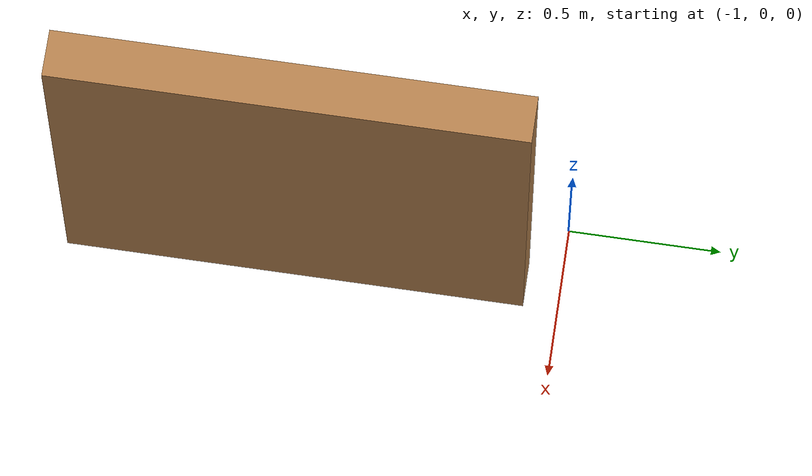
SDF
<?xml version='1.0'?>
<sdf version='1.6'>
  <model name='woll_h'>
    <pose frame=''>-0.798 -0.863 0 0 -0 0</pose>
    <link name='Wall_45'>
      <collision name='Wall_45_Collision'>
        <geometry>
          <box>
            <size>1.5 0.15 1.5</size>
          </box>
        </geometry>
        <pose frame=''>0 0 0.75 0 -0 0</pose>
      </collision>
      <visual name='Wall_45_Visual'>
        <pose frame=''>0 0 0.75 0 -0 0</pose>
        <geometry>
          <box>
            <size>1.5 0.15 1.5</size>
          </box>
        </geometry>
        <material>
          <script>
            <uri>file://media/materials/scripts/gazebo.material</uri>
            <name>Gazebo/Wood</name>
          </script>
          <ambient>1 1 1 1</ambient>
        </material>
        <meta>
          <layer>0</layer>
        </meta>
      </visual>
      <pose frame=''>0 0 0 0 -0 1.5708</pose>
    </link>
    <static>1</static>
  </model>
</sdf>
